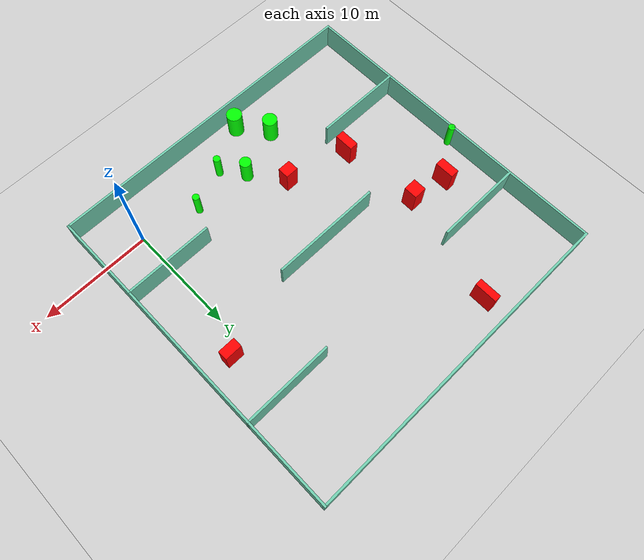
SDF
<sdf version="1.7">
 <world name="default">
  <light name="sun" type="directional">
   <pose>0 0 10 0 -0 0</pose>
   <diffuse>0.8 0.8 0.8 1</diffuse>
   <specular>0.2 0.2 0.2 1</specular>
   <attenuation>
    <range>1000</range>
    <constant>0.9</constant>
    <linear>0.01</linear>
    <quadratic>0.001</quadratic>
   </attenuation>
   <direction>-0.5 0.1 -0.9</direction>
   <spot><inner_angle>0</inner_angle><outer_angle>0</outer_angle><falloff>0</falloff></spot>
  </light>
  <model name="ground_plane">
   <static>1</static>
   <link name="link">
    <collision name="collision">
     <geometry><plane><normal>0 0 1</normal><size>100 100</size></plane></geometry>
     <surface>
      <contact><collide_bitmask>65535</collide_bitmask></contact>
      <friction><ode><mu>100</mu><mu2>50</mu2></ode></friction>
     </surface>
    </collision>
    <visual name="visual">
     <cast_shadows>0</cast_shadows>
     <geometry><plane><normal>0 0 1</normal><size>100 100</size></plane></geometry>
     <material>
      <script><uri>file://media/materials/scripts/gazebo.material</uri><name>Gazebo/Grey</name></script>
     </material>
    </visual>
   </link>
  </model>
  <gravity>0 0 -9.8</gravity>
  <magnetic_field>6e-06 2.3e-05 -4.2e-05</magnetic_field>
  <atmosphere type="adiabatic"/>
  <physics type="ode">
   <max_step_size>0.001</max_step_size>
   <real_time_factor>1</real_time_factor>
   <real_time_update_rate>1000</real_time_update_rate>
  </physics>
  <scene><ambient>0.4 0.4 0.4 1</ambient><background>0.7 0.7 0.7 1</background><shadows>1</shadows></scene>
  <spherical_coordinates>
   <surface_model>EARTH_WGS84</surface_model>
   <latitude_deg>0</latitude_deg>
   <longitude_deg>0</longitude_deg>
   <elevation>0</elevation>
   <heading_deg>0</heading_deg>
  </spherical_coordinates>
  <model name="my_base_walls">
   <link name="Wall_10">
    <collision name="Wall_10_Collision">
     <geometry><box><size>8.2 0.2 2.5</size></box></geometry>
     <pose>0 0 1.25 0 -0 0</pose>
    </collision>
    <visual name="Wall_10_Visual">
     <pose>0 0 1.25 0 -0 0</pose>
     <geometry><box><size>8.2 0.2 2.5</size></box></geometry>
     <material>
      <script><uri>file://media/materials/scripts/gazebo.material</uri><name>Gazebo/Grey</name></script>
      <ambient>0.435294 0.796078 0.67451 1</ambient>
     </material>
     <meta><layer>0</layer></meta>
    </visual>
    <pose>-11 -7 0 0 -0 0</pose>
   </link>
   <link name="Wall_12">
    <collision name="Wall_12_Collision">
     <geometry><box><size>8.2 0.2 2.5</size></box></geometry>
     <pose>0 0 1.25 0 -0 0</pose>
    </collision>
    <visual name="Wall_12_Visual">
     <pose>0 0 1.25 0 -0 0</pose>
     <geometry><box><size>8.2 0.2 2.5</size></box></geometry>
     <material>
      <script><uri>file://media/materials/scripts/gazebo.material</uri><name>Gazebo/Grey</name></script>
      <ambient>0.435294 0.796078 0.67451 1</ambient>
     </material>
     <meta><layer>0</layer></meta>
    </visual>
    <pose>-11 7 0 0 -0 0</pose>
   </link>
   <link name="Wall_14">
    <collision name="Wall_14_Collision">
     <geometry><box><size>8.2 0.2 2.5</size></box></geometry>
     <pose>0 0 1.25 0 -0 0</pose>
    </collision>
    <visual name="Wall_14_Visual">
     <pose>0 0 1.25 0 -0 0</pose>
     <geometry><box><size>8.2 0.2 2.5</size></box></geometry>
     <material>
      <script><uri>file://media/materials/scripts/gazebo.material</uri><name>Gazebo/Grey</name></script>
      <ambient>0.435294 0.796078 0.67451 1</ambient>
     </material>
     <meta><layer>0</layer></meta>
    </visual>
    <pose>11 7 0 0 -0 3.14159</pose>
   </link>
   <link name="Wall_16">
    <collision name="Wall_16_Collision">
     <geometry><box><size>10.2 0.2 2.5</size></box></geometry>
     <pose>0 0 1.25 0 -0 0</pose>
    </collision>
    <visual name="Wall_16_Visual">
     <pose>0 0 1.25 0 -0 0</pose>
     <geometry><box><size>10.2 0.2 2.5</size></box></geometry>
     <material>
      <script><uri>file://media/materials/scripts/gazebo.material</uri><name>Gazebo/Grey</name></script>
      <ambient>0.435294 0.796078 0.67451 1</ambient>
     </material>
     <meta><layer>0</layer></meta>
    </visual>
    <pose>0 0 0 0 -0 3.14159</pose>
   </link>
   <link name="Wall_2">
    <collision name="Wall_2_Collision">
     <geometry><box><size>30.2 0.2 2.5</size></box></geometry>
     <pose>0 0 1.25 0 -0 0</pose>
    </collision>
    <visual name="Wall_2_Visual">
     <pose>0 0 1.25 0 -0 0</pose>
     <geometry><box><size>30.2 0.2 2.5</size></box></geometry>
     <material>
      <script><uri>file://media/materials/scripts/gazebo.material</uri><name>Gazebo/Grey</name></script>
      <ambient>0.435294 0.796078 0.67451 1</ambient>
     </material>
     <meta><layer>0</layer></meta>
    </visual>
    <pose>0 -15 0 0 -0 3.14159</pose>
   </link>
   <link name="Wall_3">
    <collision name="Wall_3_Collision">
     <geometry><box><size>30.2 0.2 2.5</size></box></geometry>
     <pose>0 0 1.25 0 -0 0</pose>
    </collision>
    <visual name="Wall_3_Visual">
     <pose>0 0 1.25 0 -0 0</pose>
     <geometry><box><size>30.2 0.2 2.5</size></box></geometry>
     <material>
      <script><uri>file://media/materials/scripts/gazebo.material</uri><name>Gazebo/Grey</name></script>
      <ambient>0.435294 0.796078 0.67451 1</ambient>
     </material>
     <meta><layer>0</layer></meta>
    </visual>
    <pose>-15 0 0 0 -0 1.5708</pose>
   </link>
   <link name="Wall_4">
    <collision name="Wall_4_Collision">
     <geometry><box><size>30.2 0.2 2.5</size></box></geometry>
     <pose>0 0 1.25 0 -0 0</pose>
    </collision>
    <visual name="Wall_4_Visual">
     <pose>0 0 1.25 0 -0 0</pose>
     <geometry><box><size>30.2 0.2 2.5</size></box></geometry>
     <material>
      <script><uri>file://media/materials/scripts/gazebo.material</uri><name>Gazebo/Grey</name></script>
      <ambient>0.435294 0.796078 0.67451 1</ambient>
     </material>
     <meta><layer>0</layer></meta>
    </visual>
    <pose>0 15 0 0 -0 0</pose>
   </link>
   <link name="Wall_6">
    <collision name="Wall_6_Collision">
     <geometry><box><size>30.2 0.2 2.5</size></box></geometry>
     <pose>0 0 1.25 0 -0 0</pose>
    </collision>
    <visual name="Wall_6_Visual">
     <pose>0 0 1.25 0 -0 0</pose>
     <geometry><box><size>30.2 0.2 2.5</size></box></geometry>
     <material>
      <script><uri>file://media/materials/scripts/gazebo.material</uri><name>Gazebo/Grey</name></script>
      <ambient>0.435294 0.796078 0.67451 1</ambient>
     </material>
     <meta><layer>0</layer></meta>
    </visual>
    <pose>15 0 0 0 -0 1.5708</pose>
   </link>
   <link name="Wall_8">
    <collision name="Wall_8_Collision">
     <geometry><box><size>8.2 0.2 2.5</size></box></geometry>
     <pose>0 0 1.25 0 -0 0</pose>
    </collision>
    <visual name="Wall_8_Visual">
     <pose>0 0 1.25 0 -0 0</pose>
     <geometry><box><size>8.2 0.2 2.5</size></box></geometry>
     <material>
      <script><uri>file://media/materials/scripts/gazebo.material</uri><name>Gazebo/Grey</name></script>
      <ambient>0.435294 0.796078 0.67451 1</ambient>
     </material>
     <meta><layer>0</layer></meta>
    </visual>
    <pose>11 -7 0 0 -0 3.14159</pose>
   </link>
   <static>1</static>
   <pose>-11 11 0 0 -0 0</pose>
  </model>
  <model name="cylinder1">
   <static>1</static>
   <link name="link">
    <inertial>
     <mass>1</mass>
     <inertia><ixx>0.5</ixx><ixy>0</ixy><ixz>0</ixz><iyy>0.5</iyy><iyz>0</iyz><izz>1</izz></inertia>
    </inertial>
    <collision name="collision">
     <geometry><cylinder><radius>0.6985942540673082</radius><length>2.5</length></cylinder></geometry>
    </collision>
    <visual name="visual">
     <geometry><cylinder><radius>0.6985942540673082</radius><length>2.5</length></cylinder></geometry>
     <material>
      <ambient>0 1 0 1</ambient>
      <diffuse>0 1 0 1</diffuse>
      <specular>0.1 0.1 0.1 1</specular>
      <emissive>0 0 0 0</emissive>
     </material>
    </visual>
   </link>
   <pose>-13.041353764656296 -2.7410584896166177 1.25 0 0 0</pose>
  </model>
  <model name="cylinder2">
   <static>1</static>
   <link name="link">
    <inertial>
     <mass>1</mass>
     <inertia><ixx>0.5</ixx><ixy>0</ixy><ixz>0</ixz><iyy>0.5</iyy><iyz>0</iyz><izz>1</izz></inertia>
    </inertial>
    <collision name="collision">
     <geometry><cylinder><radius>0.31108300815233897</radius><length>2.5</length></cylinder></geometry>
    </collision>
    <visual name="visual">
     <geometry><cylinder><radius>0.31108300815233897</radius><length>2.5</length></cylinder></geometry>
     <material>
      <ambient>0 1 0 1</ambient>
      <diffuse>0 1 0 1</diffuse>
      <specular>0.1 0.1 0.1 1</specular>
      <emissive>0 0 0 0</emissive>
     </material>
    </visual>
   </link>
   <pose>-25.90812918854488 11.548349223626895 1.25 0 0 0</pose>
  </model>
  <model name="cylinder3">
   <static>1</static>
   <link name="link">
    <inertial>
     <mass>1</mass>
     <inertia><ixx>0.5</ixx><ixy>0</ixy><ixz>0</ixz><iyy>0.5</iyy><iyz>0</iyz><izz>1</izz></inertia>
    </inertial>
    <collision name="collision">
     <geometry><cylinder><radius>0.32814742864260377</radius><length>2.5</length></cylinder></geometry>
    </collision>
    <visual name="visual">
     <geometry><cylinder><radius>0.32814742864260377</radius><length>2.5</length></cylinder></geometry>
     <material>
      <ambient>0 1 0 1</ambient>
      <diffuse>0 1 0 1</diffuse>
      <specular>0.1 0.1 0.1 1</specular>
      <emissive>0 0 0 0</emissive>
     </material>
    </visual>
   </link>
   <pose>-8.95280423509318 -0.38198307334254533 1.25 0 0 0</pose>
  </model>
  <model name="cylinder4">
   <static>1</static>
   <link name="link">
    <inertial>
     <mass>1</mass>
     <inertia><ixx>0.5</ixx><ixy>0</ixy><ixz>0</ixz><iyy>0.5</iyy><iyz>0</iyz><izz>1</izz></inertia>
    </inertial>
    <collision name="collision">
     <geometry><cylinder><radius>0.6680163689468692</radius><length>2.5</length></cylinder></geometry>
    </collision>
    <visual name="visual">
     <geometry><cylinder><radius>0.6680163689468692</radius><length>2.5</length></cylinder></geometry>
     <material>
      <ambient>0 1 0 1</ambient>
      <diffuse>0 1 0 1</diffuse>
      <specular>0.1 0.1 0.1 1</specular>
      <emissive>0 0 0 0</emissive>
     </material>
    </visual>
   </link>
   <pose>-14.952713697336208 -0.16784458118827184 1.25 0 0 0</pose>
  </model>
  <model name="cylinder5">
   <static>1</static>
   <link name="link">
    <inertial>
     <mass>1</mass>
     <inertia><ixx>0.5</ixx><ixy>0</ixy><ixz>0</ixz><iyy>0.5</iyy><iyz>0</iyz><izz>1</izz></inertia>
    </inertial>
    <collision name="collision">
     <geometry><cylinder><radius>0.5245145581706403</radius><length>2.5</length></cylinder></geometry>
    </collision>
    <visual name="visual">
     <geometry><cylinder><radius>0.5245145581706403</radius><length>2.5</length></cylinder></geometry>
     <material>
      <ambient>0 1 0 1</ambient>
      <diffuse>0 1 0 1</diffuse>
      <specular>0.1 0.1 0.1 1</specular>
      <emissive>0 0 0 0</emissive>
     </material>
    </visual>
   </link>
   <pose>-10.500316710302114 1.570549007497327 1.25 0 0 0</pose>
  </model>
  <model name="cylinder6">
   <static>1</static>
   <link name="link">
    <inertial>
     <mass>1</mass>
     <inertia><ixx>0.5</ixx><ixy>0</ixy><ixz>0</ixz><iyy>0.5</iyy><iyz>0</iyz><izz>1</izz></inertia>
    </inertial>
    <collision name="collision">
     <geometry><cylinder><radius>0.3076069661980525</radius><length>2.5</length></cylinder></geometry>
    </collision>
    <visual name="visual">
     <geometry><cylinder><radius>0.3076069661980525</radius><length>2.5</length></cylinder></geometry>
     <material>
      <ambient>0 1 0 1</ambient>
      <diffuse>0 1 0 1</diffuse>
      <specular>0.1 0.1 0.1 1</specular>
      <emissive>0 0 0 0</emissive>
     </material>
    </visual>
   </link>
   <pose>-5.258480286289178 1.2006479093934805 1.25 0 0 0</pose>
  </model>
  <model name="box1">
   <static>1</static>
   <link name="link">
    <inertial>
     <mass>1</mass>
     <inertia><ixx>0.083</ixx><ixy>0</ixy><ixz>0</ixz><iyy>0.083</iyy><iyz>0</iyz><izz>0.083</izz></inertia>
    </inertial>
    <collision name="collision">
     <geometry><box><size>0.6615315724213845 2.0100716436517487 2.5</size></box></geometry>
    </collision>
    <visual name="visual">
     <geometry><box><size>0.6615315724213845 2.0100716436517487 2.5</size></box></geometry>
     <material>
      <ambient>1 0 0 1</ambient>
      <diffuse>1 0 0 1</diffuse>
      <specular>0.1 0.1 0.1 1</specular>
      <emissive>0 0 0 0</emissive>
     </material>
    </visual>
    <sensor name="my_contact" type="contact">
     <contact><collision>box_collision</collision><topic>__default_topic__</topic></contact>
    </sensor>
   </link>
   <pose>-16.46023829730177 23.59417755176438 1.25 0 0 0</pose>
  </model>
  <model name="box2">
   <static>1</static>
   <link name="link">
    <inertial>
     <mass>1</mass>
     <inertia><ixx>0.083</ixx><ixy>0</ixy><ixz>0</ixz><iyy>0.083</iyy><iyz>0</iyz><izz>0.083</izz></inertia>
    </inertial>
    <collision name="collision">
     <geometry><box><size>0.8233711148305627 1.7649054443789085 2.5</size></box></geometry>
    </collision>
    <visual name="visual">
     <geometry><box><size>0.8233711148305627 1.7649054443789085 2.5</size></box></geometry>
     <material>
      <ambient>1 0 0 1</ambient>
      <diffuse>1 0 0 1</diffuse>
      <specular>0.1 0.1 0.1 1</specular>
      <emissive>0 0 0 0</emissive>
     </material>
    </visual>
    <sensor name="my_contact" type="contact">
     <contact><collision>box_collision</collision><topic>__default_topic__</topic></contact>
    </sensor>
   </link>
   <pose>-22.5362926991451 13.964917061393606 1.25 0 0 0</pose>
  </model>
  <model name="box3">
   <static>1</static>
   <link name="link">
    <inertial>
     <mass>1</mass>
     <inertia><ixx>0.083</ixx><ixy>0</ixy><ixz>0</ixz><iyy>0.083</iyy><iyz>0</iyz><izz>0.083</izz></inertia>
    </inertial>
    <collision name="collision">
     <geometry><box><size>1.2081517567303248 1.0362445321972722 2.5</size></box></geometry>
    </collision>
    <visual name="visual">
     <geometry><box><size>1.2081517567303248 1.0362445321972722 2.5</size></box></geometry>
     <material>
      <ambient>1 0 0 1</ambient>
      <diffuse>1 0 0 1</diffuse>
      <specular>0.1 0.1 0.1 1</specular>
      <emissive>0 0 0 0</emissive>
     </material>
    </visual>
    <sensor name="my_contact" type="contact">
     <contact><collision>box_collision</collision><topic>__default_topic__</topic></contact>
    </sensor>
   </link>
   <pose>-12.664464421632474 4.616429678018738 1.25 0 0 0</pose>
  </model>
  <model name="box4">
   <static>1</static>
   <link name="link">
    <inertial>
     <mass>1</mass>
     <inertia><ixx>0.083</ixx><ixy>0</ixy><ixz>0</ixz><iyy>0.083</iyy><iyz>0</iyz><izz>0.083</izz></inertia>
    </inertial>
    <collision name="collision">
     <geometry><box><size>1.5649176304847718 0.8816376952865776 2.5</size></box></geometry>
    </collision>
    <visual name="visual">
     <geometry><box><size>1.5649176304847718 0.8816376952865776 2.5</size></box></geometry>
     <material>
      <ambient>1 0 0 1</ambient>
      <diffuse>1 0 0 1</diffuse>
      <specular>0.1 0.1 0.1 1</specular>
      <emissive>0 0 0 0</emissive>
     </material>
    </visual>
    <sensor name="my_contact" type="contact">
     <contact><collision>box_collision</collision><topic>__default_topic__</topic></contact>
    </sensor>
   </link>
   <pose>1.3189026438531855 12.9815224109602 1.25 0 0 0</pose>
  </model>
  <model name="box5">
   <static>1</static>
   <link name="link">
    <inertial>
     <mass>1</mass>
     <inertia><ixx>0.083</ixx><ixy>0</ixy><ixz>0</ixz><iyy>0.083</iyy><iyz>0</iyz><izz>0.083</izz></inertia>
    </inertial>
    <collision name="collision">
     <geometry><box><size>1.2076050919141834 1.2445323921432858 2.5</size></box></geometry>
    </collision>
    <visual name="visual">
     <geometry><box><size>1.2076050919141834 1.2445323921432858 2.5</size></box></geometry>
     <material>
      <ambient>1 0 0 1</ambient>
      <diffuse>1 0 0 1</diffuse>
      <specular>0.1 0.1 0.1 1</specular>
      <emissive>0 0 0 0</emissive>
     </material>
    </visual>
    <sensor name="my_contact" type="contact">
     <contact><collision>box_collision</collision><topic>__default_topic__</topic></contact>
    </sensor>
   </link>
   <pose>-19.052635485312777 13.435361637498595 1.25 0 0 0</pose>
  </model>
  <model name="box6">
   <static>1</static>
   <link name="link">
    <inertial>
     <mass>1</mass>
     <inertia><ixx>0.083</ixx><ixy>0</ixy><ixz>0</ixz><iyy>0.083</iyy><iyz>0</iyz><izz>0.083</izz></inertia>
    </inertial>
    <collision name="collision">
     <geometry><box><size>0.8148912572582152 1.7641758911245669 2.5</size></box></geometry>
    </collision>
    <visual name="visual">
     <geometry><box><size>0.8148912572582152 1.7641758911245669 2.5</size></box></geometry>
     <material>
      <ambient>1 0 0 1</ambient>
      <diffuse>1 0 0 1</diffuse>
      <specular>0.1 0.1 0.1 1</specular>
      <emissive>0 0 0 0</emissive>
     </material>
    </visual>
    <sensor name="my_contact" type="contact">
     <contact><collision>box_collision</collision><topic>__default_topic__</topic></contact>
    </sensor>
   </link>
   <pose>-18.324022422823983 6.075788234660397 1.25 0 0 0</pose>
  </model>
 </world>
</sdf>
